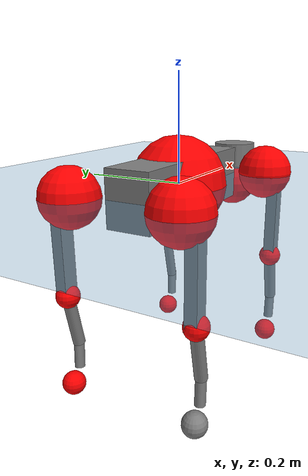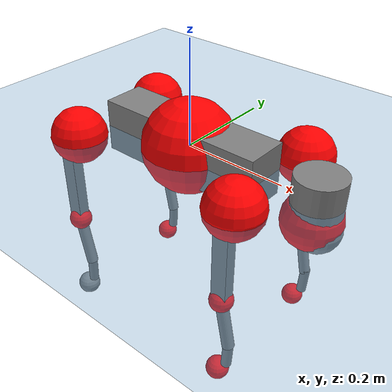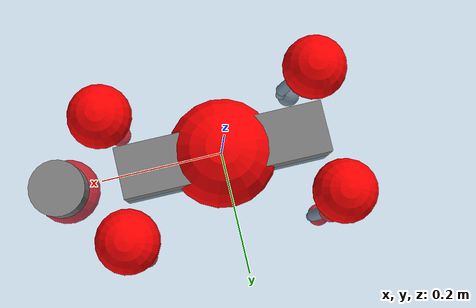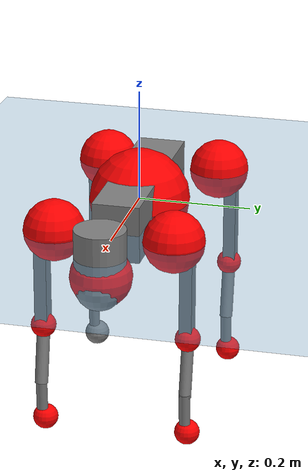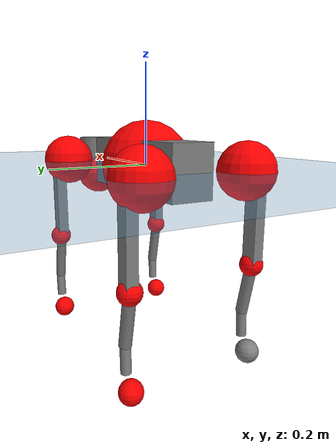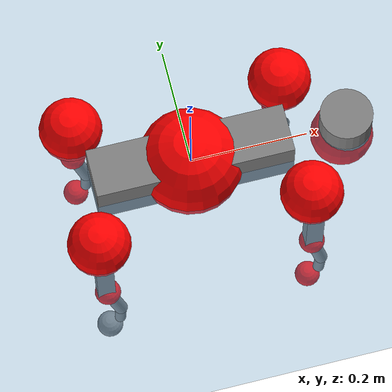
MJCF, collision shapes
<mujoco model="go2">
  <compiler angle="radian" assetdir="assets" balanceinertia="true" inertiafromgeom="false"/>

  <option timestep="0.005" density="1.2" viscosity="2e-05"/>

  <size nkey="1"/>

  <visual>
    <quality shadowsize="8192"/>
    <map shadowclip="0.5"/>
  </visual>

  <default>
    <default class="/">
      <geom contype="0" conaffinity="0" group="1" solref="-1000 -80"/>
      <site size="0.01 0.005 0.005" group="5"/>
      <general forcelimited="true" biastype="affine" gainprm="20" biasprm="0 -20 -0.5"/>
      <default class="go2">
        <joint armature="0.01" damping="0.01" frictionloss="0.2"/>
        <geom condim="1" margin="0.001"/>
        <default class="visual">
          <geom type="mesh" group="2"/>
        </default>
        <default class="collision">
          <geom group="3"/>
          <default class="foot">
            <geom size="0.022 0 0" condim="6" priority="1" friction="0.8 0.02 0.01" solimp="0.015 1 0.022"/>
          </default>
        </default>
        <default class="reward_collision_sphere">
          <geom group="5" rgba="1 0 0 1"/>
        </default>
      </default>
    </default>
  </default>

  <asset>
    <texture type="skybox" colorspace="auto" name="//unnamed_texture_0" builtin="gradient" rgb1="0.95 0.95 0.95" rgb2="0.95 0.95 0.95" width="100" height="600"/>
    <texture type="2d" colorspace="auto" name="texplane" builtin="checker" rgb1="0.345 0.575 0.748" rgb2="0.345 0.575 0.748" markrgb="1 1 1" width="512" height="512"/>
    <material name="MatPlane" class="/" texture="texplane" texuniform="true" texrepeat="2 2" specular="0.9"/>
    <material name="metal" class="/" rgba="0.9 0.95 0.95 1"/>
    <material name="black" class="/" rgba="0 0 0 1"/>
    <material name="white" class="/"/>
    <material name="gray" class="/" rgba="0.671705 0.692426 0.77427 1"/>
    <mesh name="base_0" class="/" file="base_0.obj"/>
    <mesh name="base_1" class="/" file="base_1.obj"/>
    <mesh name="base_2" class="/" file="base_2.obj"/>
    <mesh name="base_3" class="/" file="base_3.obj"/>
    <mesh name="base_4" class="/" file="base_4.obj"/>
    <mesh name="hip_0" class="/" file="hip_0.obj"/>
    <mesh name="hip_1" class="/" file="hip_1.obj"/>
    <mesh name="thigh_0" class="/" file="thigh_0.obj"/>
    <mesh name="thigh_1" class="/" file="thigh_1.obj"/>
    <mesh name="thigh_mirror_0" class="/" file="thigh_mirror_0.obj"/>
    <mesh name="thigh_mirror_1" class="/" file="thigh_mirror_1.obj"/>
    <mesh name="calf_0" class="/" file="calf_0.obj"/>
    <mesh name="calf_1" class="/" file="calf_1.obj"/>
    <mesh name="calf_mirror_0" class="/" file="calf_mirror_0.obj"/>
    <mesh name="calf_mirror_1" class="/" file="calf_mirror_1.obj"/>
    <mesh name="foot" class="/" file="foot.obj"/>
  </asset>

  <worldbody>
    <geom name="floor" class="/" size="100 100 0.125" type="plane" group="0" material="MatPlane"/>
    <light name="toplight_shadow" class="/" pos="0 0 5" dir="0.0990148 0.0990148 -0.990148" type="directional" ambient="0.04 0.04 0.04" diffuse="0.55 0.55 0.55" specular="0.12 0.12 0.12"/>
    <light name="toplight_fill" class="/" pos="0 0 5" dir="0.0990148 0.0990148 -0.990148" type="directional" castshadow="false" ambient="0.04 0.04 0.04" diffuse="0.3 0.3 0.3" specular="0.08 0.08 0.08"/>
    <body name="trunk" childclass="go2" pos="-0.00104895 -8.94627e-06 0.000312283" quat="1 -3.55625e-05 0.000249509 5.14482e-05">
      <inertial pos="0.0200451 -0.000202149 -0.00407048" quat="0.0043593 0.71731 0.0022251 0.696737" mass="4.98293" diaginertia="0.0821587 0.059517 0.0111428"/>
      <joint name="//unnamed_joint_0" type="free" armature="0" damping="0" frictionloss="0"/>
      <geom name="//unnamed_geom_1" class="visual" material="black" mesh="base_0"/>
      <geom name="//unnamed_geom_2" class="visual" material="black" mesh="base_1"/>
      <geom name="//unnamed_geom_3" class="visual" material="black" mesh="base_2"/>
      <geom name="//unnamed_geom_4" class="visual" material="white" mesh="base_3"/>
      <geom name="//unnamed_geom_5" class="visual" material="gray" mesh="base_4"/>
      <geom name="trunk_1" class="collision" size="0.169303 0.0420781 0.0513038" type="box"/>
      <geom name="trunk_2" class="collision" size="0.0450034 0.040503" pos="0.269191 0 0.00850923" type="cylinder"/>
      <geom name="trunk_3" class="collision" size="0.0423032" pos="0.276747 0 -0.0510554"/>
      <geom name="//unnamed_geom_9" class="reward_collision_sphere" size="0.0900067"/>
      <geom name="//unnamed_geom_10" class="reward_collision_sphere" size="0.054004" pos="0.264468 0 -0.0382915"/>
      <site name="imu" pos="-0.0241687 -0.0128095 0.040945" size="0.00900067"/>
      <camera name="track" pos="0 -1.8095 0" quat="0.707107 0.707107 0 0" mode="trackcom"/>
      <camera name="ego_camera" pos="0.294693 0 0.0382915" quat="-0.5 -0.5 0.5 0.5"/>
      <body name="FL_hip" pos="0.18216 0.0426164 0.00167426" quat="0.999999 -0.000976121 -0.000959075 -4.62262e-05">
        <inertial pos="-0.00476479 0.002508 0.000811014" quat="0.495116 0.495538 0.50755 0.501694" mass="0.509366" diaginertia="0.000684586 0.000371799 0.000219686"/>
        <joint name="FL_hip_joint" pos="0 0 0" axis="0.99997 -0.00662916 -0.00410053" range="-1.00284 1.04863" armature="0.00962245" damping="0.00328949" frictionloss="0.181078"/>
        <geom name="//unnamed_geom_11" class="visual" material="metal" mesh="hip_0"/>
        <geom name="//unnamed_geom_12" class="visual" material="gray" mesh="hip_1"/>
        <geom name="//unnamed_geom_13" class="collision" size="0.0414031 0.0180013" pos="0 0.07238 0" quat="0.707107 0.707107 0 0" type="cylinder"/>
        <geom name="//unnamed_geom_14" class="reward_collision_sphere" size="0.054004" pos="0 0.0633325 0"/>
        <body name="FL_thigh" pos="-0.000644194 0.0870433 0.00181584" quat="1 -7.84996e-05 0.000232148 -7.09518e-05">
          <inertial pos="-0.00353808 -0.0223051 -0.0303105" quat="0.831612 0.0872835 -0.0181643 0.548154" mass="0.848715" diaginertia="0.00448077 0.0035644 0.000391793"/>
          <joint name="FL_thigh_joint" pos="0 0 0" axis="0.00214362 0.999998 0.000412633" range="-1.56474 3.54158" armature="0.00910225" damping="0" frictionloss="0.180548"/>
          <geom name="//unnamed_geom_15" class="visual" material="metal" mesh="thigh_0"/>
          <geom name="//unnamed_geom_16" class="visual" material="gray" mesh="thigh_1"/>
          <geom name="//unnamed_geom_17" class="collision" size="0.0958571 0.0110258 0.0153011" pos="0 0 -0.0906233" quat="0.707107 0 0.707107 0" type="box"/>
          <body name="FL_calf" pos="0.00214948 0.00222484 -0.180373" quat="1 -0.000133368 6.22957e-05 -0.000112813">
            <inertial pos="0.00713296 -0.000212593 -0.119041" quat="0.711181 0.00231829 -0.00487897 0.702988" mass="0.180643" diaginertia="0.00113047 0.000894365 2.37273e-05"/>
            <joint name="FL_calf_joint" pos="0 0 0" axis="0.00134853 0.999996 -0.0023637" range="-2.71109 -0.877012" armature="0.00893103" damping="0.000746292" frictionloss="0.178221"/>
            <geom name="//unnamed_geom_18" class="visual" material="gray" mesh="calf_0"/>
            <geom name="//unnamed_geom_19" class="visual" material="black" mesh="calf_1"/>
            <geom name="FL_calf0" class="collision" size="0.0108008 0.054004" pos="0.00755623 0 -0.0510554" quat="0.994493 0 -0.104807 0" type="cylinder"/>
            <geom name="//unnamed_geom_21" class="collision" size="0.00990074 0.0292522" pos="0.0188906 0 -0.125937" quat="0.999688 0 0.0249974 0" type="cylinder"/>
            <geom name="//unnamed_geom_22" class="visual" pos="0 0 -0.181247" quat="1 0 0 0" material="black" mesh="foot"/>
            <geom name="FL_foot" class="foot" size="0.0168445" pos="-0.00188906 0 -0.181247"/>
            <geom name="//unnamed_geom_24" class="reward_collision_sphere" size="0.0225017"/>
            <geom name="//unnamed_geom_25" class="reward_collision_sphere" size="0.0225017" pos="-0.00188906 0 -0.181247"/>
            <site name="FL_foot" class="foot" pos="-0.00188906 0 -0.181247" size="0.00900067"/>
          </body>
        </body>
      </body>
      <body name="FR_hip" pos="0.183177 -0.0415407 0.00276947" quat="1 -0.000181618 -2.24026e-05 0.000186935">
        <inertial pos="-0.00395106 -0.00243825 0.000137356" quat="0.488809 0.507127 0.505566 0.498288" mass="0.508007" diaginertia="0.000686331 0.000368458 0.000219358"/>
        <joint name="FR_hip_joint" pos="0 0 0" axis="0.999997 0.000220554 0.00233555" stiffness="0.00181451" range="-1.02402 1.05987" armature="0.00907567" damping="0.0115486" frictionloss="0.170832"/>
        <geom name="//unnamed_geom_26" class="visual" pos="0 4.68919e-10 2.01129e-08" quat="4.63268e-05 1 0 0" material="metal" mesh="hip_0"/>
        <geom name="//unnamed_geom_27" class="visual" pos="0 7.60173e-10 -4.97469e-08" quat="4.63268e-05 1 0 0" material="gray" mesh="hip_1"/>
        <geom name="//unnamed_geom_28" class="collision" size="0.0414031 0.0180013" pos="0 -0.07238 0" quat="0.707107 0.707107 0 0" type="cylinder"/>
        <geom name="//unnamed_geom_29" class="reward_collision_sphere" size="0.054004" pos="0 -0.0633325 0"/>
        <body name="FR_thigh" pos="0.000167804 -0.0863888 -0.000839183" quat="1 -2.14963e-05 -0.000519634 0.000169031">
          <inertial pos="-0.00329959 0.0203051 -0.0301537" quat="0.5541 -0.0120149 0.0750751 0.828971" mass="0.853701" diaginertia="0.00461664 0.00364274 0.000403308"/>
          <joint name="FR_thigh_joint" pos="0 0 0" axis="0.000601303 -0.999992 -0.00403239" range="-3.53857 1.60067" armature="0.008334" damping="0.0136372" frictionloss="0.173011"/>
          <geom name="//unnamed_geom_30" class="visual" material="metal" mesh="thigh_mirror_0"/>
          <geom name="//unnamed_geom_31" class="visual" material="gray" mesh="thigh_mirror_1"/>
          <geom name="//unnamed_geom_32" class="collision" size="0.0958571 0.0110258 0.0153011" pos="0 0 -0.0906233" quat="0.707107 0 0.707107 0" type="box"/>
          <body name="FR_calf" pos="-0.00032915 0.000560612 -0.180872" quat="1 -3.98377e-05 3.53705e-05 5.8156e-05">
            <inertial pos="0.00530006 0.000425748 -0.117951" quat="0.703677 -0.00419337 0.00133763 0.710506" mass="0.167249" diaginertia="0.00107322 0.000886146 2.23093e-05"/>
            <joint name="FR_calf_joint" pos="0 0 0" axis="0.0063948 -0.999974 -0.00339507" stiffness="0.00150223" range="0.831775 2.72824" armature="0.00956066" damping="0.0124706" frictionloss="0.180914"/>
            <geom name="//unnamed_geom_33" class="visual" material="gray" mesh="calf_mirror_0"/>
            <geom name="//unnamed_geom_34" class="visual" material="black" mesh="calf_mirror_1"/>
            <geom name="FR_calf0" class="collision" size="0.0117009 0.054004" pos="0.00944528 0 -0.0510554" quat="0.995004 0 -0.0998334 0" type="cylinder"/>
            <geom name="//unnamed_geom_36" class="collision" size="0.00990074 0.0292522" pos="0.0188906 0 -0.125937" quat="0.999688 0 0.0249974 0" type="cylinder"/>
            <geom name="//unnamed_geom_37" class="visual" pos="0 0 -0.181247" quat="1 0 0 0" material="black" mesh="foot"/>
            <geom name="FR_foot" class="foot" size="0.0218031" pos="-0.00188906 0 -0.181247"/>
            <geom name="//unnamed_geom_39" class="reward_collision_sphere" size="0.0225017"/>
            <geom name="//unnamed_geom_40" class="reward_collision_sphere" size="0.0225017" pos="-0.00188906 0 -0.181247"/>
            <site name="FR_foot" class="foot" pos="-0.00188906 0 -0.181247" size="0.00900067"/>
          </body>
        </body>
      </body>
      <body name="RL_hip" pos="-0.181862 0.0422465 -0.00185322" quat="1 -2.07775e-05 -2.64848e-05 0.000150528">
        <inertial pos="0.00480935 0.0018871 -0.00220631" quat="0.505222 0.498428 0.497309 0.499003" mass="0.506753" diaginertia="0.000679123 0.000356827 0.000214942"/>
        <joint name="RL_hip_joint" pos="0 0 0" axis="-0.999795 0.01266 -0.0157845" range="-0.996946 1.08991" armature="0.00904104" damping="0" frictionloss="0.199786"/>
        <geom name="//unnamed_geom_41" class="visual" pos="-8.15451e-10 0 -1.59847e-07" quat="4.63268e-05 0 1 0" material="metal" mesh="hip_0"/>
        <geom name="//unnamed_geom_42" class="visual" pos="-1.32194e-09 0 -1.41762e-07" quat="4.63268e-05 0 1 0" material="gray" mesh="hip_1"/>
        <geom name="//unnamed_geom_43" class="collision" size="0.0414031 0.0180013" pos="0 0.07238 0" quat="0.707107 0.707107 0 0" type="cylinder"/>
        <geom name="//unnamed_geom_44" class="reward_collision_sphere" size="0.054004" pos="0 0.0633325 0"/>
        <body name="RL_thigh" pos="0.000623784 0.0869487 -0.00132188" quat="1 2.61245e-05 -1.84099e-05 1.48895e-05">
          <inertial pos="-0.00555951 -0.0196663 -0.0304568" quat="0.83309 0.0781902 -0.0134957 0.547417" mass="0.836052" diaginertia="0.00429664 0.00351092 0.000377235"/>
          <joint name="RL_thigh_joint" pos="0 0 0" axis="-0.0107024 0.999926 -0.00580003" stiffness="0.00396529" range="-0.566839 4.55458" armature="0.00859497" damping="0.00595559" frictionloss="0.182584"/>
          <geom name="//unnamed_geom_45" class="visual" material="metal" mesh="thigh_0"/>
          <geom name="//unnamed_geom_46" class="visual" material="gray" mesh="thigh_1"/>
          <geom name="//unnamed_geom_47" class="collision" size="0.0958571 0.0110258 0.0153011" pos="0 0 -0.0906233" quat="0.707107 0 0.707107 0" type="box"/>
          <body name="RL_calf" pos="-0.000130045 -0.00196377 -0.182985" quat="1 3.023e-05 5.09848e-05 -5.58587e-06">
            <inertial pos="0.00590203 -0.000749627 -0.119601" quat="0.705365 -0.00126556 -0.00335129 0.708835" mass="0.173044" diaginertia="0.00111661 0.000877003 2.3988e-05"/>
            <joint name="RL_calf_joint" pos="0 0 0" axis="-0.00443579 0.999949 0.00904803" range="-2.74355 -0.834696" armature="0.00918737" damping="0.000262738" frictionloss="0.181894"/>
            <geom name="//unnamed_geom_48" class="visual" material="gray" mesh="calf_0"/>
            <geom name="//unnamed_geom_49" class="visual" material="black" mesh="calf_1"/>
            <geom name="RL_calf0" class="collision" size="0.0117009 0.054004" pos="0.00944528 0 -0.0510554" quat="0.995004 0 -0.0998334 0" type="cylinder"/>
            <geom name="//unnamed_geom_51" class="collision" size="0.00990074 0.0292522" pos="0.0188906 0 -0.125937" quat="0.999688 0 0.0249974 0" type="cylinder"/>
            <geom name="//unnamed_geom_52" class="visual" pos="0 0 -0.181247" quat="1 0 0 0" material="black" mesh="foot"/>
            <geom name="RL_foot" class="foot" size="0.0179912" pos="-0.00188906 0 -0.181247"/>
            <geom name="//unnamed_geom_54" class="reward_collision_sphere" size="0.0225017"/>
            <geom name="//unnamed_geom_55" class="reward_collision_sphere" size="0.0225017" pos="-0.00188906 0 -0.181247"/>
            <site name="RL_foot" class="foot" pos="-0.00188906 0 -0.181247" size="0.00900067"/>
          </body>
        </body>
      </body>
      <body name="RR_hip" pos="-0.182743 -0.0422968 -0.000681395" quat="1 -0.000216939 -0.000221205 4.0466e-05">
        <inertial pos="0.00504741 0.000393146 -0.00120661" quat="0.499102 0.496711 0.498434 0.505706" mass="0.474705" diaginertia="0.00064608 0.000352259 0.00020697"/>
        <joint name="RR_hip_joint" pos="0 0 0" axis="-1 -0.000669189 -0.000719928" range="-1.06372 1.01469" armature="0.00903885" damping="0" frictionloss="0.17103"/>
        <geom name="//unnamed_geom_56" class="visual" pos="8.14074e-10 4.68919e-10 -1.7996e-07" quat="2.14617e-09 4.63268e-05 4.63268e-05 -1" material="metal" mesh="hip_0"/>
        <geom name="//unnamed_geom_57" class="visual" pos="1.32535e-09 7.60173e-10 -9.20149e-08" quat="2.14617e-09 4.63268e-05 4.63268e-05 -1" material="gray" mesh="hip_1"/>
        <geom name="//unnamed_geom_58" class="collision" size="0.0414031 0.0180013" pos="0 -0.07238 0" quat="0.707107 0.707107 0 0" type="cylinder"/>
        <geom name="//unnamed_geom_59" class="reward_collision_sphere" size="0.054004" pos="0 -0.0633325 0"/>
        <body name="RR_thigh" pos="-0.000523727 -0.0876832 0.00139624" quat="1 0.00017037 -4.26616e-05 0.000399154">
          <inertial pos="-0.00381494 0.0214486 -0.0279179" quat="0.551357 -0.0200347 0.0850327 0.829683" mass="0.804029" diaginertia="0.00434237 0.0034445 0.000391496"/>
          <joint name="RR_thigh_joint" pos="0 0 0" axis="0.00585844 -0.999959 0.0068376" stiffness="0.00294107" range="-4.58502 0.567554" armature="0.00910638" damping="0.0108006" frictionloss="0.163894"/>
          <geom name="//unnamed_geom_60" class="visual" material="metal" mesh="thigh_mirror_0"/>
          <geom name="//unnamed_geom_61" class="visual" material="gray" mesh="thigh_mirror_1"/>
          <geom name="//unnamed_geom_62" class="collision" size="0.0958571 0.0110258 0.0153011" pos="0 0 -0.0906233" quat="0.707107 0 0.707107 0" type="box"/>
          <body name="RR_calf" pos="0.00308263 -0.00131931 -0.182041" quat="1 0.000139385 -0.000117237 -0.000132811">
            <inertial pos="0.00471862 0.000539498 -0.120741" quat="0.703726 -0.0048441 0.0011905 0.710454" mass="0.171481" diaginertia="0.00111922 0.000873287 2.36438e-05"/>
            <joint name="RR_calf_joint" pos="0 0 0" axis="0.00379077 -0.999992 -0.00108652" range="0.835907 2.72844" armature="0.00923305" damping="0.00296513" frictionloss="0.181394"/>
            <geom name="//unnamed_geom_63" class="visual" material="gray" mesh="calf_mirror_0"/>
            <geom name="//unnamed_geom_64" class="visual" material="black" mesh="calf_mirror_1"/>
            <geom name="RR_calf0" class="collision" size="0.0117009 0.054004" pos="0.00944528 0 -0.0510554" quat="0.995004 0 -0.0998334 0" type="cylinder"/>
            <geom name="//unnamed_geom_66" class="collision" size="0.00990074 0.0292522" pos="0.0188906 0 -0.125937" quat="0.999688 0 0.0249974 0" type="cylinder"/>
            <geom name="//unnamed_geom_67" class="visual" pos="0 0 -0.181247" quat="1 0 0 0" material="black" mesh="foot"/>
            <geom name="RR_foot" class="foot" size="0.0230888" pos="-0.00188906 0 -0.181247"/>
            <geom name="//unnamed_geom_69" class="reward_collision_sphere" size="0.0225017"/>
            <geom name="//unnamed_geom_70" class="reward_collision_sphere" size="0.0225017" pos="-0.00188906 0 -0.181247"/>
            <site name="RR_foot" class="foot" pos="-0.00188906 0 -0.181247" size="0.00900067"/>
          </body>
        </body>
      </body>
    </body>
  </worldbody>

  <contact>
    <pair class="/" geom1="floor" geom2="FL_foot" name="//unnamed_contact_0"/>
    <pair class="/" geom1="floor" geom2="FR_foot" name="//unnamed_contact_1"/>
    <pair class="/" geom1="floor" geom2="RL_foot" name="//unnamed_contact_2"/>
    <pair class="/" geom1="floor" geom2="RR_foot" name="//unnamed_contact_3"/>
  </contact>

  <actuator>
    <general name="FL_hip" class="/" joint="FL_hip_joint" forcerange="-21.2036 21.2036" gainprm="18.5287" biasprm="0 -18.5287 -0.472679"/>
    <general name="FL_thigh" class="/" joint="FL_thigh_joint" forcerange="-22.9291 22.9291" gainprm="18.5287" biasprm="0 -18.5287 -0.472679"/>
    <general name="FL_calf" class="/" joint="FL_calf_joint" forcerange="-37.3744 37.3744" gainprm="18.5287" biasprm="0 -18.5287 -0.472679"/>
    <general name="FR_hip" class="/" joint="FR_hip_joint" forcerange="-21.6455 21.6455" gainprm="18.5287" biasprm="0 -18.5287 -0.472679"/>
    <general name="FR_thigh" class="/" joint="FR_thigh_joint" forcerange="-21.4593 21.4593" gainprm="18.5287" biasprm="0 -18.5287 -0.472679"/>
    <general name="FR_calf" class="/" joint="FR_calf_joint" forcerange="-44.3181 44.3181" gainprm="18.5287" biasprm="0 -18.5287 -0.472679"/>
    <general name="RL_hip" class="/" joint="RL_hip_joint" forcerange="-23.1447 23.1447" gainprm="18.5287" biasprm="0 -18.5287 -0.472679"/>
    <general name="RL_thigh" class="/" joint="RL_thigh_joint" forcerange="-21.0858 21.0858" gainprm="18.5287" biasprm="0 -18.5287 -0.472679"/>
    <general name="RL_calf" class="/" joint="RL_calf_joint" forcerange="-41.6185 41.6185" gainprm="18.5287" biasprm="0 -18.5287 -0.472679"/>
    <general name="RR_hip" class="/" joint="RR_hip_joint" forcerange="-21.0351 21.0351" gainprm="18.5287" biasprm="0 -18.5287 -0.472679"/>
    <general name="RR_thigh" class="/" joint="RR_thigh_joint" forcerange="-19.3108 19.3108" gainprm="18.5287" biasprm="0 -18.5287 -0.472679"/>
    <general name="RR_calf" class="/" joint="RR_calf_joint" forcerange="-38.4515 38.4515" gainprm="18.5287" biasprm="0 -18.5287 -0.472679"/>
  </actuator>

  <sensor>
    <gyro site="imu" name="imu_angular_velocity"/>
    <velocimeter site="imu" name="imu_linear_velocity"/>
    <framelinvel objtype="site" objname="FL_foot" name="FL_foot_global_linear_velocity"/>
    <framelinvel objtype="site" objname="FR_foot" name="FR_foot_global_linear_velocity"/>
    <framelinvel objtype="site" objname="RL_foot" name="RL_foot_global_linear_velocity"/>
    <framelinvel objtype="site" objname="RR_foot" name="RR_foot_global_linear_velocity"/>
  </sensor>

  <keyframe>
    <key name="home" qpos="0 0 0.325 1 0 0 0 0.1 0.8 -1.5 -0.1 -0.8 1.5 -0.1 0.8 -1.5 0.1 -0.8 1.5"/>
  </keyframe>
</mujoco>
